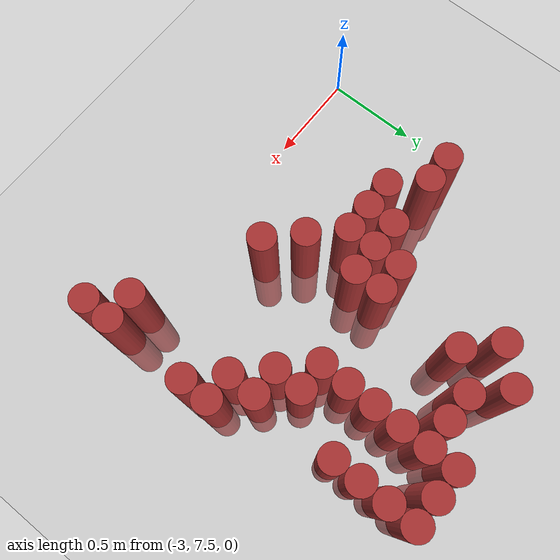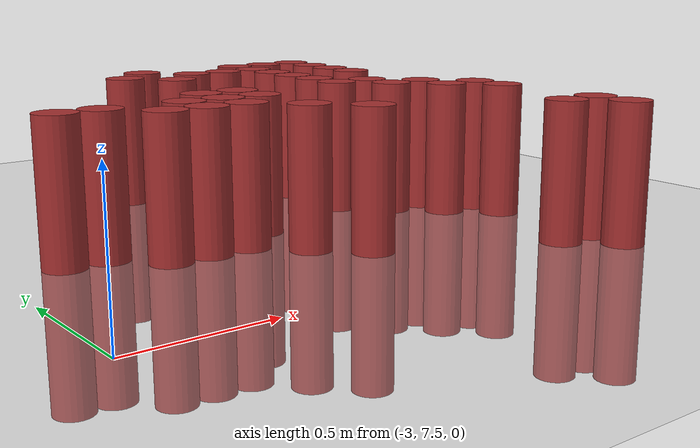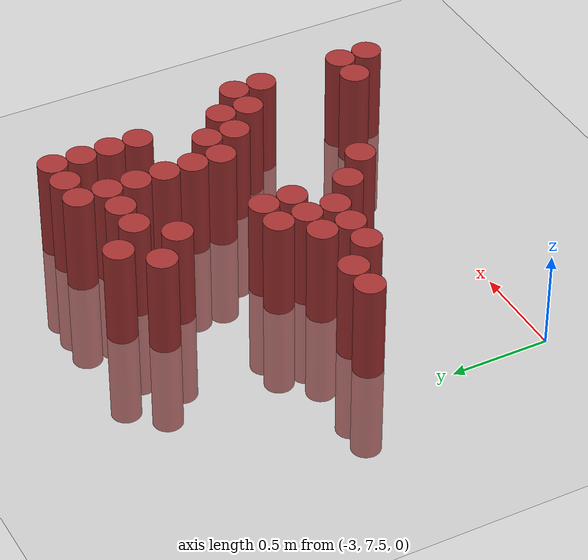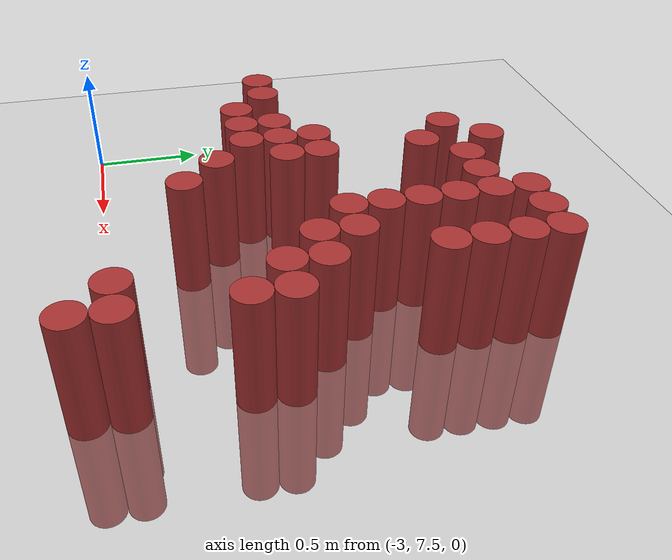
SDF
<sdf version="1.6">
 <world name="default">
  <model name="ground_plane">
   <static>1</static>
   <link name="link">
    <collision name="collision">
     <geometry><plane><normal>0 0 1</normal><size>100 100</size></plane></geometry>
     <surface><friction><ode><mu>100</mu><mu2>50</mu2></ode></friction></surface>
    </collision>
    <visual name="visual">
     <cast_shadows>0</cast_shadows>
     <geometry><plane><normal>0 0 1</normal><size>100 100</size></plane></geometry>
     <material>
      <script><uri>file://media/materials/scripts/gazebo.material</uri><name>Gazebo/Grey</name></script>
     </material>
    </visual>
   </link>
  </model>
  <model name="unit_cylinder_187">
   <static>1</static>
   <pose>-2.775000 8.325000 0.000000 0.000000 0.000000 0.000000</pose>
   <link name="link">
    <inertial>
     <mass>1</mass>
     <inertia><ixx>0.145833</ixx><ixy>0</ixy><ixz>0</ixz><iyy>0.145833</iyy><iyz>0</iyz><izz>0.125</izz></inertia>
    </inertial>
    <collision name="collision">
     <geometry><cylinder><radius>0.075000</radius><length>1</length></cylinder></geometry>
    </collision>
    <visual name="visual">
     <geometry><cylinder><radius>0.075000</radius><length>1</length></cylinder></geometry>
     <material>
      <ambient>0.648000 0.192000 0.192000 1</ambient>
      <diffuse>0.648000 0.192000 0.192000 1</diffuse>
     </material>
     <material>
      <script><name>Gazebo/Grey</name><uri>file://media/materials/scripts/gazebo.material</uri></script>
     </material>
    </visual>
    <sensor name="sensor_contact" type="contact"><contact><collision>collision</collision></contact></sensor>
   </link>
   <plugin filename="gz-sim-touchplugin-system" name="gz::sim::systems::TouchPlugin">
    <target>robot</target>
    <namespace>robot</namespace>
    <time>0.001</time>
    <enabled>true</enabled>
   </plugin>
  </model>
  <model name="unit_cylinder_188">
   <static>1</static>
   <pose>-2.625000 8.325000 0.000000 0.000000 0.000000 0.000000</pose>
   <link name="link">
    <inertial>
     <mass>1</mass>
     <inertia><ixx>0.145833</ixx><ixy>0</ixy><ixz>0</ixz><iyy>0.145833</iyy><iyz>0</iyz><izz>0.125</izz></inertia>
    </inertial>
    <collision name="collision">
     <geometry><cylinder><radius>0.075000</radius><length>1</length></cylinder></geometry>
    </collision>
    <visual name="visual">
     <geometry><cylinder><radius>0.075000</radius><length>1</length></cylinder></geometry>
     <material>
      <ambient>0.648000 0.192000 0.192000 1</ambient>
      <diffuse>0.648000 0.192000 0.192000 1</diffuse>
     </material>
     <material>
      <script><name>Gazebo/Grey</name><uri>file://media/materials/scripts/gazebo.material</uri></script>
     </material>
    </visual>
    <sensor name="sensor_contact" type="contact"><contact><collision>collision</collision></contact></sensor>
   </link>
   <plugin filename="gz-sim-touchplugin-system" name="gz::sim::systems::TouchPlugin">
    <target>robot</target>
    <namespace>robot</namespace>
    <time>0.001</time>
    <enabled>true</enabled>
   </plugin>
  </model>
  <model name="unit_cylinder_189">
   <static>1</static>
   <pose>-2.475000 8.175000 0.000000 0.000000 0.000000 0.000000</pose>
   <link name="link">
    <inertial>
     <mass>1</mass>
     <inertia><ixx>0.145833</ixx><ixy>0</ixy><ixz>0</ixz><iyy>0.145833</iyy><iyz>0</iyz><izz>0.125</izz></inertia>
    </inertial>
    <collision name="collision">
     <geometry><cylinder><radius>0.075000</radius><length>1</length></cylinder></geometry>
    </collision>
    <visual name="visual">
     <geometry><cylinder><radius>0.075000</radius><length>1</length></cylinder></geometry>
     <material>
      <ambient>0.648000 0.192000 0.192000 1</ambient>
      <diffuse>0.648000 0.192000 0.192000 1</diffuse>
     </material>
     <material>
      <script><name>Gazebo/Grey</name><uri>file://media/materials/scripts/gazebo.material</uri></script>
     </material>
    </visual>
    <sensor name="sensor_contact" type="contact"><contact><collision>collision</collision></contact></sensor>
   </link>
   <plugin filename="gz-sim-touchplugin-system" name="gz::sim::systems::TouchPlugin">
    <target>robot</target>
    <namespace>robot</namespace>
    <time>0.001</time>
    <enabled>true</enabled>
   </plugin>
  </model>
  <model name="unit_cylinder_193">
   <static>1</static>
   <pose>-2.325000 8.175000 0.000000 0.000000 0.000000 0.000000</pose>
   <link name="link">
    <inertial>
     <mass>1</mass>
     <inertia><ixx>0.145833</ixx><ixy>0</ixy><ixz>0</ixz><iyy>0.145833</iyy><iyz>0</iyz><izz>0.125</izz></inertia>
    </inertial>
    <collision name="collision">
     <geometry><cylinder><radius>0.075000</radius><length>1</length></cylinder></geometry>
    </collision>
    <visual name="visual">
     <geometry><cylinder><radius>0.075000</radius><length>1</length></cylinder></geometry>
     <material>
      <ambient>0.648000 0.192000 0.192000 1</ambient>
      <diffuse>0.648000 0.192000 0.192000 1</diffuse>
     </material>
     <material>
      <script><name>Gazebo/Grey</name><uri>file://media/materials/scripts/gazebo.material</uri></script>
     </material>
    </visual>
    <sensor name="sensor_contact" type="contact"><contact><collision>collision</collision></contact></sensor>
   </link>
   <plugin filename="gz-sim-touchplugin-system" name="gz::sim::systems::TouchPlugin">
    <target>robot</target>
    <namespace>robot</namespace>
    <time>0.001</time>
    <enabled>true</enabled>
   </plugin>
  </model>
  <model name="unit_cylinder_194">
   <static>1</static>
   <pose>-2.325000 8.325000 0.000000 0.000000 0.000000 0.000000</pose>
   <link name="link">
    <inertial>
     <mass>1</mass>
     <inertia><ixx>0.145833</ixx><ixy>0</ixy><ixz>0</ixz><iyy>0.145833</iyy><iyz>0</iyz><izz>0.125</izz></inertia>
    </inertial>
    <collision name="collision">
     <geometry><cylinder><radius>0.075000</radius><length>1</length></cylinder></geometry>
    </collision>
    <visual name="visual">
     <geometry><cylinder><radius>0.075000</radius><length>1</length></cylinder></geometry>
     <material>
      <ambient>0.648000 0.192000 0.192000 1</ambient>
      <diffuse>0.648000 0.192000 0.192000 1</diffuse>
     </material>
     <material>
      <script><name>Gazebo/Grey</name><uri>file://media/materials/scripts/gazebo.material</uri></script>
     </material>
    </visual>
    <sensor name="sensor_contact" type="contact"><contact><collision>collision</collision></contact></sensor>
   </link>
   <plugin filename="gz-sim-touchplugin-system" name="gz::sim::systems::TouchPlugin">
    <target>robot</target>
    <namespace>robot</namespace>
    <time>0.001</time>
    <enabled>true</enabled>
   </plugin>
  </model>
  <model name="unit_cylinder_200">
   <static>1</static>
   <pose>-2.175000 8.175000 0.000000 0.000000 0.000000 0.000000</pose>
   <link name="link">
    <inertial>
     <mass>1</mass>
     <inertia><ixx>0.145833</ixx><ixy>0</ixy><ixz>0</ixz><iyy>0.145833</iyy><iyz>0</iyz><izz>0.125</izz></inertia>
    </inertial>
    <collision name="collision">
     <geometry><cylinder><radius>0.075000</radius><length>1</length></cylinder></geometry>
    </collision>
    <visual name="visual">
     <geometry><cylinder><radius>0.075000</radius><length>1</length></cylinder></geometry>
     <material>
      <ambient>0.648000 0.192000 0.192000 1</ambient>
      <diffuse>0.648000 0.192000 0.192000 1</diffuse>
     </material>
     <material>
      <script><name>Gazebo/Grey</name><uri>file://media/materials/scripts/gazebo.material</uri></script>
     </material>
    </visual>
    <sensor name="sensor_contact" type="contact"><contact><collision>collision</collision></contact></sensor>
   </link>
   <plugin filename="gz-sim-touchplugin-system" name="gz::sim::systems::TouchPlugin">
    <target>robot</target>
    <namespace>robot</namespace>
    <time>0.001</time>
    <enabled>true</enabled>
   </plugin>
  </model>
  <model name="unit_cylinder_201">
   <static>1</static>
   <pose>-2.175000 8.325000 0.000000 0.000000 0.000000 0.000000</pose>
   <link name="link">
    <inertial>
     <mass>1</mass>
     <inertia><ixx>0.145833</ixx><ixy>0</ixy><ixz>0</ixz><iyy>0.145833</iyy><iyz>0</iyz><izz>0.125</izz></inertia>
    </inertial>
    <collision name="collision">
     <geometry><cylinder><radius>0.075000</radius><length>1</length></cylinder></geometry>
    </collision>
    <visual name="visual">
     <geometry><cylinder><radius>0.075000</radius><length>1</length></cylinder></geometry>
     <material>
      <ambient>0.648000 0.192000 0.192000 1</ambient>
      <diffuse>0.648000 0.192000 0.192000 1</diffuse>
     </material>
     <material>
      <script><name>Gazebo/Grey</name><uri>file://media/materials/scripts/gazebo.material</uri></script>
     </material>
    </visual>
    <sensor name="sensor_contact" type="contact"><contact><collision>collision</collision></contact></sensor>
   </link>
   <plugin filename="gz-sim-touchplugin-system" name="gz::sim::systems::TouchPlugin">
    <target>robot</target>
    <namespace>robot</namespace>
    <time>0.001</time>
    <enabled>true</enabled>
   </plugin>
  </model>
  <model name="unit_cylinder_202">
   <static>1</static>
   <pose>-2.175000 8.475000 0.000000 0.000000 0.000000 0.000000</pose>
   <link name="link">
    <inertial>
     <mass>1</mass>
     <inertia><ixx>0.145833</ixx><ixy>0</ixy><ixz>0</ixz><iyy>0.145833</iyy><iyz>0</iyz><izz>0.125</izz></inertia>
    </inertial>
    <collision name="collision">
     <geometry><cylinder><radius>0.075000</radius><length>1</length></cylinder></geometry>
    </collision>
    <visual name="visual">
     <geometry><cylinder><radius>0.075000</radius><length>1</length></cylinder></geometry>
     <material>
      <ambient>0.648000 0.192000 0.192000 1</ambient>
      <diffuse>0.648000 0.192000 0.192000 1</diffuse>
     </material>
     <material>
      <script><name>Gazebo/Grey</name><uri>file://media/materials/scripts/gazebo.material</uri></script>
     </material>
    </visual>
    <sensor name="sensor_contact" type="contact"><contact><collision>collision</collision></contact></sensor>
   </link>
   <plugin filename="gz-sim-touchplugin-system" name="gz::sim::systems::TouchPlugin">
    <target>robot</target>
    <namespace>robot</namespace>
    <time>0.001</time>
    <enabled>true</enabled>
   </plugin>
  </model>
  <model name="unit_cylinder_203">
   <static>1</static>
   <pose>-2.175000 9.075000 0.000000 0.000000 0.000000 0.000000</pose>
   <link name="link">
    <inertial>
     <mass>1</mass>
     <inertia><ixx>0.145833</ixx><ixy>0</ixy><ixz>0</ixz><iyy>0.145833</iyy><iyz>0</iyz><izz>0.125</izz></inertia>
    </inertial>
    <collision name="collision">
     <geometry><cylinder><radius>0.075000</radius><length>1</length></cylinder></geometry>
    </collision>
    <visual name="visual">
     <geometry><cylinder><radius>0.075000</radius><length>1</length></cylinder></geometry>
     <material>
      <ambient>0.648000 0.192000 0.192000 1</ambient>
      <diffuse>0.648000 0.192000 0.192000 1</diffuse>
     </material>
     <material>
      <script><name>Gazebo/Grey</name><uri>file://media/materials/scripts/gazebo.material</uri></script>
     </material>
    </visual>
    <sensor name="sensor_contact" type="contact"><contact><collision>collision</collision></contact></sensor>
   </link>
   <plugin filename="gz-sim-touchplugin-system" name="gz::sim::systems::TouchPlugin">
    <target>robot</target>
    <namespace>robot</namespace>
    <time>0.001</time>
    <enabled>true</enabled>
   </plugin>
  </model>
  <model name="unit_cylinder_208">
   <static>1</static>
   <pose>-2.025000 8.025000 0.000000 0.000000 0.000000 0.000000</pose>
   <link name="link">
    <inertial>
     <mass>1</mass>
     <inertia><ixx>0.145833</ixx><ixy>0</ixy><ixz>0</ixz><iyy>0.145833</iyy><iyz>0</iyz><izz>0.125</izz></inertia>
    </inertial>
    <collision name="collision">
     <geometry><cylinder><radius>0.075000</radius><length>1</length></cylinder></geometry>
    </collision>
    <visual name="visual">
     <geometry><cylinder><radius>0.075000</radius><length>1</length></cylinder></geometry>
     <material>
      <ambient>0.648000 0.192000 0.192000 1</ambient>
      <diffuse>0.648000 0.192000 0.192000 1</diffuse>
     </material>
     <material>
      <script><name>Gazebo/Grey</name><uri>file://media/materials/scripts/gazebo.material</uri></script>
     </material>
    </visual>
    <sensor name="sensor_contact" type="contact"><contact><collision>collision</collision></contact></sensor>
   </link>
   <plugin filename="gz-sim-touchplugin-system" name="gz::sim::systems::TouchPlugin">
    <target>robot</target>
    <namespace>robot</namespace>
    <time>0.001</time>
    <enabled>true</enabled>
   </plugin>
  </model>
  <model name="unit_cylinder_209">
   <static>1</static>
   <pose>-2.025000 8.325000 0.000000 0.000000 0.000000 0.000000</pose>
   <link name="link">
    <inertial>
     <mass>1</mass>
     <inertia><ixx>0.145833</ixx><ixy>0</ixy><ixz>0</ixz><iyy>0.145833</iyy><iyz>0</iyz><izz>0.125</izz></inertia>
    </inertial>
    <collision name="collision">
     <geometry><cylinder><radius>0.075000</radius><length>1</length></cylinder></geometry>
    </collision>
    <visual name="visual">
     <geometry><cylinder><radius>0.075000</radius><length>1</length></cylinder></geometry>
     <material>
      <ambient>0.648000 0.192000 0.192000 1</ambient>
      <diffuse>0.648000 0.192000 0.192000 1</diffuse>
     </material>
     <material>
      <script><name>Gazebo/Grey</name><uri>file://media/materials/scripts/gazebo.material</uri></script>
     </material>
    </visual>
    <sensor name="sensor_contact" type="contact"><contact><collision>collision</collision></contact></sensor>
   </link>
   <plugin filename="gz-sim-touchplugin-system" name="gz::sim::systems::TouchPlugin">
    <target>robot</target>
    <namespace>robot</namespace>
    <time>0.001</time>
    <enabled>true</enabled>
   </plugin>
  </model>
  <model name="unit_cylinder_210">
   <static>1</static>
   <pose>-2.025000 8.475000 0.000000 0.000000 0.000000 0.000000</pose>
   <link name="link">
    <inertial>
     <mass>1</mass>
     <inertia><ixx>0.145833</ixx><ixy>0</ixy><ixz>0</ixz><iyy>0.145833</iyy><iyz>0</iyz><izz>0.125</izz></inertia>
    </inertial>
    <collision name="collision">
     <geometry><cylinder><radius>0.075000</radius><length>1</length></cylinder></geometry>
    </collision>
    <visual name="visual">
     <geometry><cylinder><radius>0.075000</radius><length>1</length></cylinder></geometry>
     <material>
      <ambient>0.648000 0.192000 0.192000 1</ambient>
      <diffuse>0.648000 0.192000 0.192000 1</diffuse>
     </material>
     <material>
      <script><name>Gazebo/Grey</name><uri>file://media/materials/scripts/gazebo.material</uri></script>
     </material>
    </visual>
    <sensor name="sensor_contact" type="contact"><contact><collision>collision</collision></contact></sensor>
   </link>
   <plugin filename="gz-sim-touchplugin-system" name="gz::sim::systems::TouchPlugin">
    <target>robot</target>
    <namespace>robot</namespace>
    <time>0.001</time>
    <enabled>true</enabled>
   </plugin>
  </model>
  <model name="unit_cylinder_211">
   <static>1</static>
   <pose>-2.025000 8.925000 0.000000 0.000000 0.000000 0.000000</pose>
   <link name="link">
    <inertial>
     <mass>1</mass>
     <inertia><ixx>0.145833</ixx><ixy>0</ixy><ixz>0</ixz><iyy>0.145833</iyy><iyz>0</iyz><izz>0.125</izz></inertia>
    </inertial>
    <collision name="collision">
     <geometry><cylinder><radius>0.075000</radius><length>1</length></cylinder></geometry>
    </collision>
    <visual name="visual">
     <geometry><cylinder><radius>0.075000</radius><length>1</length></cylinder></geometry>
     <material>
      <ambient>0.648000 0.192000 0.192000 1</ambient>
      <diffuse>0.648000 0.192000 0.192000 1</diffuse>
     </material>
     <material>
      <script><name>Gazebo/Grey</name><uri>file://media/materials/scripts/gazebo.material</uri></script>
     </material>
    </visual>
    <sensor name="sensor_contact" type="contact"><contact><collision>collision</collision></contact></sensor>
   </link>
   <plugin filename="gz-sim-touchplugin-system" name="gz::sim::systems::TouchPlugin">
    <target>robot</target>
    <namespace>robot</namespace>
    <time>0.001</time>
    <enabled>true</enabled>
   </plugin>
  </model>
  <model name="unit_cylinder_212">
   <static>1</static>
   <pose>-2.025000 9.225000 0.000000 0.000000 0.000000 0.000000</pose>
   <link name="link">
    <inertial>
     <mass>1</mass>
     <inertia><ixx>0.145833</ixx><ixy>0</ixy><ixz>0</ixz><iyy>0.145833</iyy><iyz>0</iyz><izz>0.125</izz></inertia>
    </inertial>
    <collision name="collision">
     <geometry><cylinder><radius>0.075000</radius><length>1</length></cylinder></geometry>
    </collision>
    <visual name="visual">
     <geometry><cylinder><radius>0.075000</radius><length>1</length></cylinder></geometry>
     <material>
      <ambient>0.648000 0.192000 0.192000 1</ambient>
      <diffuse>0.648000 0.192000 0.192000 1</diffuse>
     </material>
     <material>
      <script><name>Gazebo/Grey</name><uri>file://media/materials/scripts/gazebo.material</uri></script>
     </material>
    </visual>
    <sensor name="sensor_contact" type="contact"><contact><collision>collision</collision></contact></sensor>
   </link>
   <plugin filename="gz-sim-touchplugin-system" name="gz::sim::systems::TouchPlugin">
    <target>robot</target>
    <namespace>robot</namespace>
    <time>0.001</time>
    <enabled>true</enabled>
   </plugin>
  </model>
  <model name="unit_cylinder_215">
   <static>1</static>
   <pose>-1.875000 7.875000 0.000000 0.000000 0.000000 0.000000</pose>
   <link name="link">
    <inertial>
     <mass>1</mass>
     <inertia><ixx>0.145833</ixx><ixy>0</ixy><ixz>0</ixz><iyy>0.145833</iyy><iyz>0</iyz><izz>0.125</izz></inertia>
    </inertial>
    <collision name="collision">
     <geometry><cylinder><radius>0.075000</radius><length>1</length></cylinder></geometry>
    </collision>
    <visual name="visual">
     <geometry><cylinder><radius>0.075000</radius><length>1</length></cylinder></geometry>
     <material>
      <ambient>0.648000 0.192000 0.192000 1</ambient>
      <diffuse>0.648000 0.192000 0.192000 1</diffuse>
     </material>
     <material>
      <script><name>Gazebo/Grey</name><uri>file://media/materials/scripts/gazebo.material</uri></script>
     </material>
    </visual>
    <sensor name="sensor_contact" type="contact"><contact><collision>collision</collision></contact></sensor>
   </link>
   <plugin filename="gz-sim-touchplugin-system" name="gz::sim::systems::TouchPlugin">
    <target>robot</target>
    <namespace>robot</namespace>
    <time>0.001</time>
    <enabled>true</enabled>
   </plugin>
  </model>
  <model name="unit_cylinder_216">
   <static>1</static>
   <pose>-1.875000 9.075000 0.000000 0.000000 0.000000 0.000000</pose>
   <link name="link">
    <inertial>
     <mass>1</mass>
     <inertia><ixx>0.145833</ixx><ixy>0</ixy><ixz>0</ixz><iyy>0.145833</iyy><iyz>0</iyz><izz>0.125</izz></inertia>
    </inertial>
    <collision name="collision">
     <geometry><cylinder><radius>0.075000</radius><length>1</length></cylinder></geometry>
    </collision>
    <visual name="visual">
     <geometry><cylinder><radius>0.075000</radius><length>1</length></cylinder></geometry>
     <material>
      <ambient>0.648000 0.192000 0.192000 1</ambient>
      <diffuse>0.648000 0.192000 0.192000 1</diffuse>
     </material>
     <material>
      <script><name>Gazebo/Grey</name><uri>file://media/materials/scripts/gazebo.material</uri></script>
     </material>
    </visual>
    <sensor name="sensor_contact" type="contact"><contact><collision>collision</collision></contact></sensor>
   </link>
   <plugin filename="gz-sim-touchplugin-system" name="gz::sim::systems::TouchPlugin">
    <target>robot</target>
    <namespace>robot</namespace>
    <time>0.001</time>
    <enabled>true</enabled>
   </plugin>
  </model>
  <model name="unit_cylinder_220">
   <static>1</static>
   <pose>-1.725000 9.075000 0.000000 0.000000 0.000000 0.000000</pose>
   <link name="link">
    <inertial>
     <mass>1</mass>
     <inertia><ixx>0.145833</ixx><ixy>0</ixy><ixz>0</ixz><iyy>0.145833</iyy><iyz>0</iyz><izz>0.125</izz></inertia>
    </inertial>
    <collision name="collision">
     <geometry><cylinder><radius>0.075000</radius><length>1</length></cylinder></geometry>
    </collision>
    <visual name="visual">
     <geometry><cylinder><radius>0.075000</radius><length>1</length></cylinder></geometry>
     <material>
      <ambient>0.648000 0.192000 0.192000 1</ambient>
      <diffuse>0.648000 0.192000 0.192000 1</diffuse>
     </material>
     <material>
      <script><name>Gazebo/Grey</name><uri>file://media/materials/scripts/gazebo.material</uri></script>
     </material>
    </visual>
    <sensor name="sensor_contact" type="contact"><contact><collision>collision</collision></contact></sensor>
   </link>
   <plugin filename="gz-sim-touchplugin-system" name="gz::sim::systems::TouchPlugin">
    <target>robot</target>
    <namespace>robot</namespace>
    <time>0.001</time>
    <enabled>true</enabled>
   </plugin>
  </model>
  <model name="unit_cylinder_225">
   <static>1</static>
   <pose>-1.575000 8.475000 0.000000 0.000000 0.000000 0.000000</pose>
   <link name="link">
    <inertial>
     <mass>1</mass>
     <inertia><ixx>0.145833</ixx><ixy>0</ixy><ixz>0</ixz><iyy>0.145833</iyy><iyz>0</iyz><izz>0.125</izz></inertia>
    </inertial>
    <collision name="collision">
     <geometry><cylinder><radius>0.075000</radius><length>1</length></cylinder></geometry>
    </collision>
    <visual name="visual">
     <geometry><cylinder><radius>0.075000</radius><length>1</length></cylinder></geometry>
     <material>
      <ambient>0.648000 0.192000 0.192000 1</ambient>
      <diffuse>0.648000 0.192000 0.192000 1</diffuse>
     </material>
     <material>
      <script><name>Gazebo/Grey</name><uri>file://media/materials/scripts/gazebo.material</uri></script>
     </material>
    </visual>
    <sensor name="sensor_contact" type="contact"><contact><collision>collision</collision></contact></sensor>
   </link>
   <plugin filename="gz-sim-touchplugin-system" name="gz::sim::systems::TouchPlugin">
    <target>robot</target>
    <namespace>robot</namespace>
    <time>0.001</time>
    <enabled>true</enabled>
   </plugin>
  </model>
  <model name="unit_cylinder_226">
   <static>1</static>
   <pose>-1.575000 8.625000 0.000000 0.000000 0.000000 0.000000</pose>
   <link name="link">
    <inertial>
     <mass>1</mass>
     <inertia><ixx>0.145833</ixx><ixy>0</ixy><ixz>0</ixz><iyy>0.145833</iyy><iyz>0</iyz><izz>0.125</izz></inertia>
    </inertial>
    <collision name="collision">
     <geometry><cylinder><radius>0.075000</radius><length>1</length></cylinder></geometry>
    </collision>
    <visual name="visual">
     <geometry><cylinder><radius>0.075000</radius><length>1</length></cylinder></geometry>
     <material>
      <ambient>0.648000 0.192000 0.192000 1</ambient>
      <diffuse>0.648000 0.192000 0.192000 1</diffuse>
     </material>
     <material>
      <script><name>Gazebo/Grey</name><uri>file://media/materials/scripts/gazebo.material</uri></script>
     </material>
    </visual>
    <sensor name="sensor_contact" type="contact"><contact><collision>collision</collision></contact></sensor>
   </link>
   <plugin filename="gz-sim-touchplugin-system" name="gz::sim::systems::TouchPlugin">
    <target>robot</target>
    <namespace>robot</namespace>
    <time>0.001</time>
    <enabled>true</enabled>
   </plugin>
  </model>
  <model name="unit_cylinder_227">
   <static>1</static>
   <pose>-1.575000 8.775000 0.000000 0.000000 0.000000 0.000000</pose>
   <link name="link">
    <inertial>
     <mass>1</mass>
     <inertia><ixx>0.145833</ixx><ixy>0</ixy><ixz>0</ixz><iyy>0.145833</iyy><iyz>0</iyz><izz>0.125</izz></inertia>
    </inertial>
    <collision name="collision">
     <geometry><cylinder><radius>0.075000</radius><length>1</length></cylinder></geometry>
    </collision>
    <visual name="visual">
     <geometry><cylinder><radius>0.075000</radius><length>1</length></cylinder></geometry>
     <material>
      <ambient>0.648000 0.192000 0.192000 1</ambient>
      <diffuse>0.648000 0.192000 0.192000 1</diffuse>
     </material>
     <material>
      <script><name>Gazebo/Grey</name><uri>file://media/materials/scripts/gazebo.material</uri></script>
     </material>
    </visual>
    <sensor name="sensor_contact" type="contact"><contact><collision>collision</collision></contact></sensor>
   </link>
   <plugin filename="gz-sim-touchplugin-system" name="gz::sim::systems::TouchPlugin">
    <target>robot</target>
    <namespace>robot</namespace>
    <time>0.001</time>
    <enabled>true</enabled>
   </plugin>
  </model>
  <model name="unit_cylinder_228">
   <static>1</static>
   <pose>-1.575000 8.925000 0.000000 0.000000 0.000000 0.000000</pose>
   <link name="link">
    <inertial>
     <mass>1</mass>
     <inertia><ixx>0.145833</ixx><ixy>0</ixy><ixz>0</ixz><iyy>0.145833</iyy><iyz>0</iyz><izz>0.125</izz></inertia>
    </inertial>
    <collision name="collision">
     <geometry><cylinder><radius>0.075000</radius><length>1</length></cylinder></geometry>
    </collision>
    <visual name="visual">
     <geometry><cylinder><radius>0.075000</radius><length>1</length></cylinder></geometry>
     <material>
      <ambient>0.648000 0.192000 0.192000 1</ambient>
      <diffuse>0.648000 0.192000 0.192000 1</diffuse>
     </material>
     <material>
      <script><name>Gazebo/Grey</name><uri>file://media/materials/scripts/gazebo.material</uri></script>
     </material>
    </visual>
    <sensor name="sensor_contact" type="contact"><contact><collision>collision</collision></contact></sensor>
   </link>
   <plugin filename="gz-sim-touchplugin-system" name="gz::sim::systems::TouchPlugin">
    <target>robot</target>
    <namespace>robot</namespace>
    <time>0.001</time>
    <enabled>true</enabled>
   </plugin>
  </model>
  <model name="unit_cylinder_229">
   <static>1</static>
   <pose>-1.575000 9.075000 0.000000 0.000000 0.000000 0.000000</pose>
   <link name="link">
    <inertial>
     <mass>1</mass>
     <inertia><ixx>0.145833</ixx><ixy>0</ixy><ixz>0</ixz><iyy>0.145833</iyy><iyz>0</iyz><izz>0.125</izz></inertia>
    </inertial>
    <collision name="collision">
     <geometry><cylinder><radius>0.075000</radius><length>1</length></cylinder></geometry>
    </collision>
    <visual name="visual">
     <geometry><cylinder><radius>0.075000</radius><length>1</length></cylinder></geometry>
     <material>
      <ambient>0.648000 0.192000 0.192000 1</ambient>
      <diffuse>0.648000 0.192000 0.192000 1</diffuse>
     </material>
     <material>
      <script><name>Gazebo/Grey</name><uri>file://media/materials/scripts/gazebo.material</uri></script>
     </material>
    </visual>
    <sensor name="sensor_contact" type="contact"><contact><collision>collision</collision></contact></sensor>
   </link>
   <plugin filename="gz-sim-touchplugin-system" name="gz::sim::systems::TouchPlugin">
    <target>robot</target>
    <namespace>robot</namespace>
    <time>0.001</time>
    <enabled>true</enabled>
   </plugin>
  </model>
  <model name="unit_cylinder_230">
   <static>1</static>
   <pose>-1.575000 9.225000 0.000000 0.000000 0.000000 0.000000</pose>
   <link name="link">
    <inertial>
     <mass>1</mass>
     <inertia><ixx>0.145833</ixx><ixy>0</ixy><ixz>0</ixz><iyy>0.145833</iyy><iyz>0</iyz><izz>0.125</izz></inertia>
    </inertial>
    <collision name="collision">
     <geometry><cylinder><radius>0.075000</radius><length>1</length></cylinder></geometry>
    </collision>
    <visual name="visual">
     <geometry><cylinder><radius>0.075000</radius><length>1</length></cylinder></geometry>
     <material>
      <ambient>0.648000 0.192000 0.192000 1</ambient>
      <diffuse>0.648000 0.192000 0.192000 1</diffuse>
     </material>
     <material>
      <script><name>Gazebo/Grey</name><uri>file://media/materials/scripts/gazebo.material</uri></script>
     </material>
    </visual>
    <sensor name="sensor_contact" type="contact"><contact><collision>collision</collision></contact></sensor>
   </link>
   <plugin filename="gz-sim-touchplugin-system" name="gz::sim::systems::TouchPlugin">
    <target>robot</target>
    <namespace>robot</namespace>
    <time>0.001</time>
    <enabled>true</enabled>
   </plugin>
  </model>
  <model name="unit_cylinder_233">
   <static>1</static>
   <pose>-1.425000 8.325000 0.000000 0.000000 0.000000 0.000000</pose>
   <link name="link">
    <inertial>
     <mass>1</mass>
     <inertia><ixx>0.145833</ixx><ixy>0</ixy><ixz>0</ixz><iyy>0.145833</iyy><iyz>0</iyz><izz>0.125</izz></inertia>
    </inertial>
    <collision name="collision">
     <geometry><cylinder><radius>0.075000</radius><length>1</length></cylinder></geometry>
    </collision>
    <visual name="visual">
     <geometry><cylinder><radius>0.075000</radius><length>1</length></cylinder></geometry>
     <material>
      <ambient>0.648000 0.192000 0.192000 1</ambient>
      <diffuse>0.648000 0.192000 0.192000 1</diffuse>
     </material>
     <material>
      <script><name>Gazebo/Grey</name><uri>file://media/materials/scripts/gazebo.material</uri></script>
     </material>
    </visual>
    <sensor name="sensor_contact" type="contact"><contact><collision>collision</collision></contact></sensor>
   </link>
   <plugin filename="gz-sim-touchplugin-system" name="gz::sim::systems::TouchPlugin">
    <target>robot</target>
    <namespace>robot</namespace>
    <time>0.001</time>
    <enabled>true</enabled>
   </plugin>
  </model>
  <model name="unit_cylinder_234">
   <static>1</static>
   <pose>-1.425000 8.475000 0.000000 0.000000 0.000000 0.000000</pose>
   <link name="link">
    <inertial>
     <mass>1</mass>
     <inertia><ixx>0.145833</ixx><ixy>0</ixy><ixz>0</ixz><iyy>0.145833</iyy><iyz>0</iyz><izz>0.125</izz></inertia>
    </inertial>
    <collision name="collision">
     <geometry><cylinder><radius>0.075000</radius><length>1</length></cylinder></geometry>
    </collision>
    <visual name="visual">
     <geometry><cylinder><radius>0.075000</radius><length>1</length></cylinder></geometry>
     <material>
      <ambient>0.648000 0.192000 0.192000 1</ambient>
      <diffuse>0.648000 0.192000 0.192000 1</diffuse>
     </material>
     <material>
      <script><name>Gazebo/Grey</name><uri>file://media/materials/scripts/gazebo.material</uri></script>
     </material>
    </visual>
    <sensor name="sensor_contact" type="contact"><contact><collision>collision</collision></contact></sensor>
   </link>
   <plugin filename="gz-sim-touchplugin-system" name="gz::sim::systems::TouchPlugin">
    <target>robot</target>
    <namespace>robot</namespace>
    <time>0.001</time>
    <enabled>true</enabled>
   </plugin>
  </model>
  <model name="unit_cylinder_235">
   <static>1</static>
   <pose>-1.425000 9.225000 0.000000 0.000000 0.000000 0.000000</pose>
   <link name="link">
    <inertial>
     <mass>1</mass>
     <inertia><ixx>0.145833</ixx><ixy>0</ixy><ixz>0</ixz><iyy>0.145833</iyy><iyz>0</iyz><izz>0.125</izz></inertia>
    </inertial>
    <collision name="collision">
     <geometry><cylinder><radius>0.075000</radius><length>1</length></cylinder></geometry>
    </collision>
    <visual name="visual">
     <geometry><cylinder><radius>0.075000</radius><length>1</length></cylinder></geometry>
     <material>
      <ambient>0.648000 0.192000 0.192000 1</ambient>
      <diffuse>0.648000 0.192000 0.192000 1</diffuse>
     </material>
     <material>
      <script><name>Gazebo/Grey</name><uri>file://media/materials/scripts/gazebo.material</uri></script>
     </material>
    </visual>
    <sensor name="sensor_contact" type="contact"><contact><collision>collision</collision></contact></sensor>
   </link>
   <plugin filename="gz-sim-touchplugin-system" name="gz::sim::systems::TouchPlugin">
    <target>robot</target>
    <namespace>robot</namespace>
    <time>0.001</time>
    <enabled>true</enabled>
   </plugin>
  </model>
  <model name="unit_cylinder_239">
   <static>1</static>
   <pose>-1.275000 7.575000 0.000000 0.000000 0.000000 0.000000</pose>
   <link name="link">
    <inertial>
     <mass>1</mass>
     <inertia><ixx>0.145833</ixx><ixy>0</ixy><ixz>0</ixz><iyy>0.145833</iyy><iyz>0</iyz><izz>0.125</izz></inertia>
    </inertial>
    <collision name="collision">
     <geometry><cylinder><radius>0.075000</radius><length>1</length></cylinder></geometry>
    </collision>
    <visual name="visual">
     <geometry><cylinder><radius>0.075000</radius><length>1</length></cylinder></geometry>
     <material>
      <ambient>0.648000 0.192000 0.192000 1</ambient>
      <diffuse>0.648000 0.192000 0.192000 1</diffuse>
     </material>
     <material>
      <script><name>Gazebo/Grey</name><uri>file://media/materials/scripts/gazebo.material</uri></script>
     </material>
    </visual>
    <sensor name="sensor_contact" type="contact"><contact><collision>collision</collision></contact></sensor>
   </link>
   <plugin filename="gz-sim-touchplugin-system" name="gz::sim::systems::TouchPlugin">
    <target>robot</target>
    <namespace>robot</namespace>
    <time>0.001</time>
    <enabled>true</enabled>
   </plugin>
  </model>
  <model name="unit_cylinder_240">
   <static>1</static>
   <pose>-1.275000 8.175000 0.000000 0.000000 0.000000 0.000000</pose>
   <link name="link">
    <inertial>
     <mass>1</mass>
     <inertia><ixx>0.145833</ixx><ixy>0</ixy><ixz>0</ixz><iyy>0.145833</iyy><iyz>0</iyz><izz>0.125</izz></inertia>
    </inertial>
    <collision name="collision">
     <geometry><cylinder><radius>0.075000</radius><length>1</length></cylinder></geometry>
    </collision>
    <visual name="visual">
     <geometry><cylinder><radius>0.075000</radius><length>1</length></cylinder></geometry>
     <material>
      <ambient>0.648000 0.192000 0.192000 1</ambient>
      <diffuse>0.648000 0.192000 0.192000 1</diffuse>
     </material>
     <material>
      <script><name>Gazebo/Grey</name><uri>file://media/materials/scripts/gazebo.material</uri></script>
     </material>
    </visual>
    <sensor name="sensor_contact" type="contact"><contact><collision>collision</collision></contact></sensor>
   </link>
   <plugin filename="gz-sim-touchplugin-system" name="gz::sim::systems::TouchPlugin">
    <target>robot</target>
    <namespace>robot</namespace>
    <time>0.001</time>
    <enabled>true</enabled>
   </plugin>
  </model>
  <model name="unit_cylinder_241">
   <static>1</static>
   <pose>-1.275000 8.325000 0.000000 0.000000 0.000000 0.000000</pose>
   <link name="link">
    <inertial>
     <mass>1</mass>
     <inertia><ixx>0.145833</ixx><ixy>0</ixy><ixz>0</ixz><iyy>0.145833</iyy><iyz>0</iyz><izz>0.125</izz></inertia>
    </inertial>
    <collision name="collision">
     <geometry><cylinder><radius>0.075000</radius><length>1</length></cylinder></geometry>
    </collision>
    <visual name="visual">
     <geometry><cylinder><radius>0.075000</radius><length>1</length></cylinder></geometry>
     <material>
      <ambient>0.648000 0.192000 0.192000 1</ambient>
      <diffuse>0.648000 0.192000 0.192000 1</diffuse>
     </material>
     <material>
      <script><name>Gazebo/Grey</name><uri>file://media/materials/scripts/gazebo.material</uri></script>
     </material>
    </visual>
    <sensor name="sensor_contact" type="contact"><contact><collision>collision</collision></contact></sensor>
   </link>
   <plugin filename="gz-sim-touchplugin-system" name="gz::sim::systems::TouchPlugin">
    <target>robot</target>
    <namespace>robot</namespace>
    <time>0.001</time>
    <enabled>true</enabled>
   </plugin>
  </model>
  <model name="unit_cylinder_242">
   <static>1</static>
   <pose>-1.275000 8.775000 0.000000 0.000000 0.000000 0.000000</pose>
   <link name="link">
    <inertial>
     <mass>1</mass>
     <inertia><ixx>0.145833</ixx><ixy>0</ixy><ixz>0</ixz><iyy>0.145833</iyy><iyz>0</iyz><izz>0.125</izz></inertia>
    </inertial>
    <collision name="collision">
     <geometry><cylinder><radius>0.075000</radius><length>1</length></cylinder></geometry>
    </collision>
    <visual name="visual">
     <geometry><cylinder><radius>0.075000</radius><length>1</length></cylinder></geometry>
     <material>
      <ambient>0.648000 0.192000 0.192000 1</ambient>
      <diffuse>0.648000 0.192000 0.192000 1</diffuse>
     </material>
     <material>
      <script><name>Gazebo/Grey</name><uri>file://media/materials/scripts/gazebo.material</uri></script>
     </material>
    </visual>
    <sensor name="sensor_contact" type="contact"><contact><collision>collision</collision></contact></sensor>
   </link>
   <plugin filename="gz-sim-touchplugin-system" name="gz::sim::systems::TouchPlugin">
    <target>robot</target>
    <namespace>robot</namespace>
    <time>0.001</time>
    <enabled>true</enabled>
   </plugin>
  </model>
  <model name="unit_cylinder_243">
   <static>1</static>
   <pose>-1.275000 8.925000 0.000000 0.000000 0.000000 0.000000</pose>
   <link name="link">
    <inertial>
     <mass>1</mass>
     <inertia><ixx>0.145833</ixx><ixy>0</ixy><ixz>0</ixz><iyy>0.145833</iyy><iyz>0</iyz><izz>0.125</izz></inertia>
    </inertial>
    <collision name="collision">
     <geometry><cylinder><radius>0.075000</radius><length>1</length></cylinder></geometry>
    </collision>
    <visual name="visual">
     <geometry><cylinder><radius>0.075000</radius><length>1</length></cylinder></geometry>
     <material>
      <ambient>0.648000 0.192000 0.192000 1</ambient>
      <diffuse>0.648000 0.192000 0.192000 1</diffuse>
     </material>
     <material>
      <script><name>Gazebo/Grey</name><uri>file://media/materials/scripts/gazebo.material</uri></script>
     </material>
    </visual>
    <sensor name="sensor_contact" type="contact"><contact><collision>collision</collision></contact></sensor>
   </link>
   <plugin filename="gz-sim-touchplugin-system" name="gz::sim::systems::TouchPlugin">
    <target>robot</target>
    <namespace>robot</namespace>
    <time>0.001</time>
    <enabled>true</enabled>
   </plugin>
  </model>
  <model name="unit_cylinder_244">
   <static>1</static>
   <pose>-1.275000 9.075000 0.000000 0.000000 0.000000 0.000000</pose>
   <link name="link">
    <inertial>
     <mass>1</mass>
     <inertia><ixx>0.145833</ixx><ixy>0</ixy><ixz>0</ixz><iyy>0.145833</iyy><iyz>0</iyz><izz>0.125</izz></inertia>
    </inertial>
    <collision name="collision">
     <geometry><cylinder><radius>0.075000</radius><length>1</length></cylinder></geometry>
    </collision>
    <visual name="visual">
     <geometry><cylinder><radius>0.075000</radius><length>1</length></cylinder></geometry>
     <material>
      <ambient>0.648000 0.192000 0.192000 1</ambient>
      <diffuse>0.648000 0.192000 0.192000 1</diffuse>
     </material>
     <material>
      <script><name>Gazebo/Grey</name><uri>file://media/materials/scripts/gazebo.material</uri></script>
     </material>
    </visual>
    <sensor name="sensor_contact" type="contact"><contact><collision>collision</collision></contact></sensor>
   </link>
   <plugin filename="gz-sim-touchplugin-system" name="gz::sim::systems::TouchPlugin">
    <target>robot</target>
    <namespace>robot</namespace>
    <time>0.001</time>
    <enabled>true</enabled>
   </plugin>
  </model>
  <model name="unit_cylinder_245">
   <static>1</static>
   <pose>-1.275000 9.225000 0.000000 0.000000 0.000000 0.000000</pose>
   <link name="link">
    <inertial>
     <mass>1</mass>
     <inertia><ixx>0.145833</ixx><ixy>0</ixy><ixz>0</ixz><iyy>0.145833</iyy><iyz>0</iyz><izz>0.125</izz></inertia>
    </inertial>
    <collision name="collision">
     <geometry><cylinder><radius>0.075000</radius><length>1</length></cylinder></geometry>
    </collision>
    <visual name="visual">
     <geometry><cylinder><radius>0.075000</radius><length>1</length></cylinder></geometry>
     <material>
      <ambient>0.648000 0.192000 0.192000 1</ambient>
      <diffuse>0.648000 0.192000 0.192000 1</diffuse>
     </material>
     <material>
      <script><name>Gazebo/Grey</name><uri>file://media/materials/scripts/gazebo.material</uri></script>
     </material>
    </visual>
    <sensor name="sensor_contact" type="contact"><contact><collision>collision</collision></contact></sensor>
   </link>
   <plugin filename="gz-sim-touchplugin-system" name="gz::sim::systems::TouchPlugin">
    <target>robot</target>
    <namespace>robot</namespace>
    <time>0.001</time>
    <enabled>true</enabled>
   </plugin>
  </model>
  <model name="unit_cylinder_251">
   <static>1</static>
   <pose>-1.125000 7.425000 0.000000 0.000000 0.000000 0.000000</pose>
   <link name="link">
    <inertial>
     <mass>1</mass>
     <inertia><ixx>0.145833</ixx><ixy>0</ixy><ixz>0</ixz><iyy>0.145833</iyy><iyz>0</iyz><izz>0.125</izz></inertia>
    </inertial>
    <collision name="collision">
     <geometry><cylinder><radius>0.075000</radius><length>1</length></cylinder></geometry>
    </collision>
    <visual name="visual">
     <geometry><cylinder><radius>0.075000</radius><length>1</length></cylinder></geometry>
     <material>
      <ambient>0.648000 0.192000 0.192000 1</ambient>
      <diffuse>0.648000 0.192000 0.192000 1</diffuse>
     </material>
     <material>
      <script><name>Gazebo/Grey</name><uri>file://media/materials/scripts/gazebo.material</uri></script>
     </material>
    </visual>
    <sensor name="sensor_contact" type="contact"><contact><collision>collision</collision></contact></sensor>
   </link>
   <plugin filename="gz-sim-touchplugin-system" name="gz::sim::systems::TouchPlugin">
    <target>robot</target>
    <namespace>robot</namespace>
    <time>0.001</time>
    <enabled>true</enabled>
   </plugin>
  </model>
  <model name="unit_cylinder_252">
   <static>1</static>
   <pose>-1.125000 7.575000 0.000000 0.000000 0.000000 0.000000</pose>
   <link name="link">
    <inertial>
     <mass>1</mass>
     <inertia><ixx>0.145833</ixx><ixy>0</ixy><ixz>0</ixz><iyy>0.145833</iyy><iyz>0</iyz><izz>0.125</izz></inertia>
    </inertial>
    <collision name="collision">
     <geometry><cylinder><radius>0.075000</radius><length>1</length></cylinder></geometry>
    </collision>
    <visual name="visual">
     <geometry><cylinder><radius>0.075000</radius><length>1</length></cylinder></geometry>
     <material>
      <ambient>0.648000 0.192000 0.192000 1</ambient>
      <diffuse>0.648000 0.192000 0.192000 1</diffuse>
     </material>
     <material>
      <script><name>Gazebo/Grey</name><uri>file://media/materials/scripts/gazebo.material</uri></script>
     </material>
    </visual>
    <sensor name="sensor_contact" type="contact"><contact><collision>collision</collision></contact></sensor>
   </link>
   <plugin filename="gz-sim-touchplugin-system" name="gz::sim::systems::TouchPlugin">
    <target>robot</target>
    <namespace>robot</namespace>
    <time>0.001</time>
    <enabled>true</enabled>
   </plugin>
  </model>
  <model name="unit_cylinder_253">
   <static>1</static>
   <pose>-1.125000 8.025000 0.000000 0.000000 0.000000 0.000000</pose>
   <link name="link">
    <inertial>
     <mass>1</mass>
     <inertia><ixx>0.145833</ixx><ixy>0</ixy><ixz>0</ixz><iyy>0.145833</iyy><iyz>0</iyz><izz>0.125</izz></inertia>
    </inertial>
    <collision name="collision">
     <geometry><cylinder><radius>0.075000</radius><length>1</length></cylinder></geometry>
    </collision>
    <visual name="visual">
     <geometry><cylinder><radius>0.075000</radius><length>1</length></cylinder></geometry>
     <material>
      <ambient>0.648000 0.192000 0.192000 1</ambient>
      <diffuse>0.648000 0.192000 0.192000 1</diffuse>
     </material>
     <material>
      <script><name>Gazebo/Grey</name><uri>file://media/materials/scripts/gazebo.material</uri></script>
     </material>
    </visual>
    <sensor name="sensor_contact" type="contact"><contact><collision>collision</collision></contact></sensor>
   </link>
   <plugin filename="gz-sim-touchplugin-system" name="gz::sim::systems::TouchPlugin">
    <target>robot</target>
    <namespace>robot</namespace>
    <time>0.001</time>
    <enabled>true</enabled>
   </plugin>
  </model>
  <model name="unit_cylinder_254">
   <static>1</static>
   <pose>-1.125000 8.175000 0.000000 0.000000 0.000000 0.000000</pose>
   <link name="link">
    <inertial>
     <mass>1</mass>
     <inertia><ixx>0.145833</ixx><ixy>0</ixy><ixz>0</ixz><iyy>0.145833</iyy><iyz>0</iyz><izz>0.125</izz></inertia>
    </inertial>
    <collision name="collision">
     <geometry><cylinder><radius>0.075000</radius><length>1</length></cylinder></geometry>
    </collision>
    <visual name="visual">
     <geometry><cylinder><radius>0.075000</radius><length>1</length></cylinder></geometry>
     <material>
      <ambient>0.648000 0.192000 0.192000 1</ambient>
      <diffuse>0.648000 0.192000 0.192000 1</diffuse>
     </material>
     <material>
      <script><name>Gazebo/Grey</name><uri>file://media/materials/scripts/gazebo.material</uri></script>
     </material>
    </visual>
    <sensor name="sensor_contact" type="contact"><contact><collision>collision</collision></contact></sensor>
   </link>
   <plugin filename="gz-sim-touchplugin-system" name="gz::sim::systems::TouchPlugin">
    <target>robot</target>
    <namespace>robot</namespace>
    <time>0.001</time>
    <enabled>true</enabled>
   </plugin>
  </model>
 </world>
</sdf>
